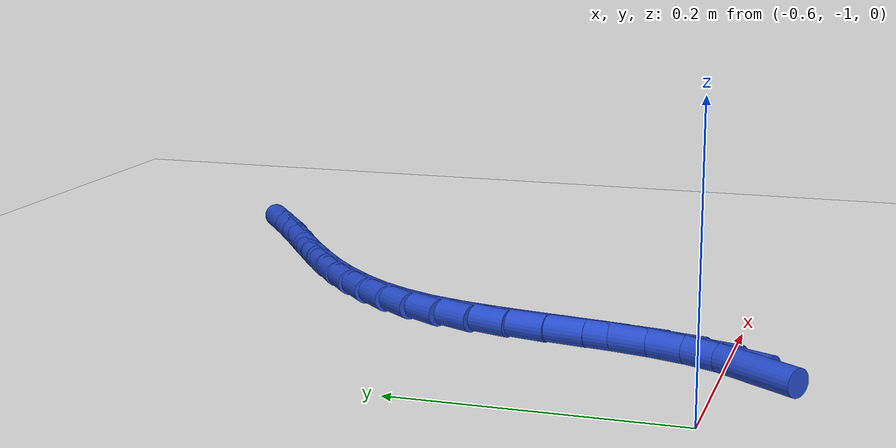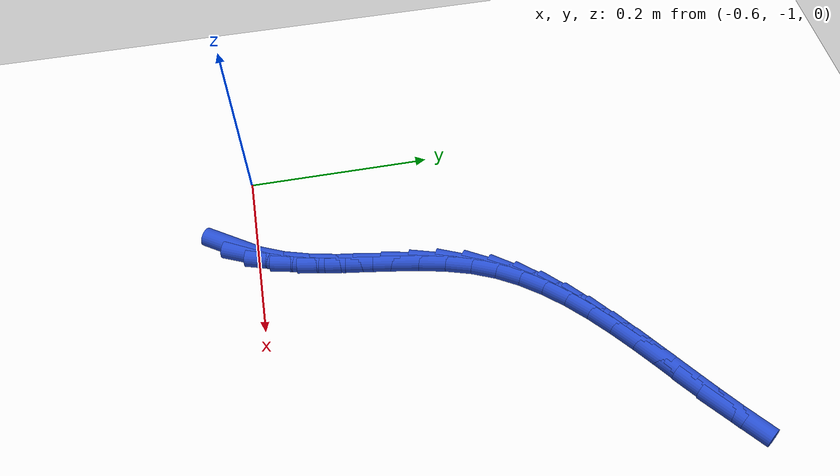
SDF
<sdf version="1.6">
 <world name="default">
  <model name="ground_plane">
   <static>1</static>
   <link name="link">
    <collision name="collision">
     <geometry><plane><normal>0 0 1</normal><size>100 100</size></plane></geometry>
     <surface><friction><ode><mu>100</mu><mu2>50</mu2></ode></friction></surface>
    </collision>
    <visual name="visual">
     <cast_shadows>0</cast_shadows>
     <geometry><plane><normal>0 0 1</normal><size>100 100</size></plane></geometry>
     <material>
      <script><uri>file://media/materials/scripts/gazebo.material</uri><name>Gazebo/WhiteGlow</name></script>
     </material>
    </visual>
   </link>
  </model>
  <model name="line">
   <link name="link_208">
    <pose>-0.5051352361949727 -1.019443185577198 0.01 0 1.57 0.9690706521282587</pose>
    <collision name="collision">
     <geometry><cylinder><radius>0.01</radius><length>0.08</length></cylinder></geometry>
    </collision>
    <visual name="visual">
     <material>
      <script><name>Gazebo/Blue</name><uri>file://media/materials/scripts/gazebo.material</uri></script>
     </material>
     <geometry><cylinder><radius>0.01</radius><length>0.08</length></cylinder></geometry>
    </visual>
   </link>
   <link name="link_209">
    <pose>-0.49033282059571887 -0.9978864738229533 0.01 0 1.57 1.1386271792740852</pose>
    <collision name="collision">
     <geometry><cylinder><radius>0.01</radius><length>0.08</length></cylinder></geometry>
    </collision>
    <visual name="visual">
     <material>
      <script><name>Gazebo/Blue</name><uri>file://media/materials/scripts/gazebo.material</uri></script>
     </material>
     <geometry><cylinder><radius>0.01</radius><length>0.08</length></cylinder></geometry>
    </visual>
   </link>
   <link name="link_210">
    <pose>-0.4791696905641966 -0.9736845151750033 0.01 0 1.57 1.2645328469423418</pose>
    <collision name="collision">
     <geometry><cylinder><radius>0.01</radius><length>0.08</length></cylinder></geometry>
    </collision>
    <visual name="visual">
     <material>
      <script><name>Gazebo/Blue</name><uri>file://media/materials/scripts/gazebo.material</uri></script>
     </material>
     <geometry><cylinder><radius>0.01</radius><length>0.08</length></cylinder></geometry>
    </visual>
   </link>
   <link name="link_211">
    <pose>-0.47085461396724915 -0.9473886637559941 0.01 0 1.57 1.3483328888640917</pose>
    <collision name="collision">
     <geometry><cylinder><radius>0.01</radius><length>0.08</length></cylinder></geometry>
    </collision>
    <visual name="visual">
     <material>
      <script><name>Gazebo/Blue</name><uri>file://media/materials/scripts/gazebo.material</uri></script>
     </material>
     <geometry><cylinder><radius>0.01</radius><length>0.08</length></cylinder></geometry>
    </visual>
   </link>
   <link name="link_212">
    <pose>-0.46456163994962907 -0.9195691852667582 0.01 0 1.57 1.3954749590549334</pose>
    <collision name="collision">
     <geometry><cylinder><radius>0.01</radius><length>0.08</length></cylinder></geometry>
    </collision>
    <visual name="visual">
     <material>
      <script><name>Gazebo/Blue</name><uri>file://media/materials/scripts/gazebo.material</uri></script>
     </material>
     <geometry><cylinder><radius>0.01</radius><length>0.08</length></cylinder></geometry>
    </visual>
   </link>
   <link name="link_213">
    <pose>-0.4594648176560885 -0.8907963454081271 0.01 0 1.57 1.4100793084229402</pose>
    <collision name="collision">
     <geometry><cylinder><radius>0.01</radius><length>0.08</length></cylinder></geometry>
    </collision>
    <visual name="visual">
     <material>
      <script><name>Gazebo/Blue</name><uri>file://media/materials/scripts/gazebo.material</uri></script>
     </material>
     <geometry><cylinder><radius>0.01</radius><length>0.08</length></cylinder></geometry>
    </visual>
   </link>
   <link name="link_214">
    <pose>-0.45473819623137957 -0.861640409880933 0.01 0 1.57 1.3937737785738575</pose>
    <collision name="collision">
     <geometry><cylinder><radius>0.01</radius><length>0.08</length></cylinder></geometry>
    </collision>
    <visual name="visual">
     <material>
      <script><name>Gazebo/Blue</name><uri>file://media/materials/scripts/gazebo.material</uri></script>
     </material>
     <geometry><cylinder><radius>0.01</radius><length>0.08</length></cylinder></geometry>
    </visual>
   </link>
   <link name="link_215">
    <pose>-0.44955582482025486 -0.8326716443860084 0.01 0 1.57 1.3455540392796126</pose>
    <collision name="collision">
     <geometry><cylinder><radius>0.01</radius><length>0.08</length></cylinder></geometry>
    </collision>
    <visual name="visual">
     <material>
      <script><name>Gazebo/Blue</name><uri>file://media/materials/scripts/gazebo.material</uri></script>
     </material>
     <geometry><cylinder><radius>0.01</radius><length>0.08</length></cylinder></geometry>
    </visual>
   </link>
   <link name="link_216">
    <pose>-0.4430917525674663 -0.8044603146241847 0.01 0 1.57 1.2621409923336382</pose>
    <collision name="collision">
     <geometry><cylinder><radius>0.01</radius><length>0.08</length></cylinder></geometry>
    </collision>
    <visual name="visual">
     <material>
      <script><name>Gazebo/Blue</name><uri>file://media/materials/scripts/gazebo.material</uri></script>
     </material>
     <geometry><cylinder><radius>0.01</radius><length>0.08</length></cylinder></geometry>
    </visual>
   </link>
   <link name="link_217">
    <pose>-0.4345200286177665 -0.7775766862962944 0.01 0 1.57 1.1436510172550718</pose>
    <collision name="collision">
     <geometry><cylinder><radius>0.01</radius><length>0.08</length></cylinder></geometry>
    </collision>
    <visual name="visual">
     <material>
      <script><name>Gazebo/Blue</name><uri>file://media/materials/scripts/gazebo.material</uri></script>
     </material>
     <geometry><cylinder><radius>0.01</radius><length>0.08</length></cylinder></geometry>
    </visual>
   </link>
   <link name="link_218">
    <pose>-0.423115848115354 -0.7525219367391008 0.01 0 1.57 1.021600754092088</pose>
    <collision name="collision">
     <geometry><cylinder><radius>0.01</radius><length>0.08</length></cylinder></geometry>
    </collision>
    <visual name="visual">
     <material>
      <script><name>Gazebo/Blue</name><uri>file://media/materials/scripts/gazebo.material</uri></script>
     </material>
     <geometry><cylinder><radius>0.01</radius><length>0.08</length></cylinder></geometry>
    </visual>
   </link>
   <link name="link_219">
    <pose>-0.4088976583361755 -0.7292895605915478 0.01 0 1.57 0.9141175079416836</pose>
    <collision name="collision">
     <geometry><cylinder><radius>0.01</radius><length>0.08</length></cylinder></geometry>
    </collision>
    <visual name="visual">
     <material>
      <script><name>Gazebo/Blue</name><uri>file://media/materials/scripts/gazebo.material</uri></script>
     </material>
     <geometry><cylinder><radius>0.01</radius><length>0.08</length></cylinder></geometry>
    </visual>
   </link>
   <link name="link_220">
    <pose>-0.3922153669154114 -0.7076466465635417 0.01 0 1.57 0.823566908474492</pose>
    <collision name="collision">
     <geometry><cylinder><radius>0.01</radius><length>0.08</length></cylinder></geometry>
    </collision>
    <visual name="visual">
     <material>
      <script><name>Gazebo/Blue</name><uri>file://media/materials/scripts/gazebo.material</uri></script>
     </material>
     <geometry><cylinder><radius>0.01</radius><length>0.08</length></cylinder></geometry>
    </visual>
   </link>
   <link name="link_221">
    <pose>-0.37342040957731226 -0.6873592395948501 0.01 0 1.57 0.750410908914772</pose>
    <collision name="collision">
     <geometry><cylinder><radius>0.01</radius><length>0.08</length></cylinder></geometry>
    </collision>
    <visual name="visual">
     <material>
      <script><name>Gazebo/Blue</name><uri>file://media/materials/scripts/gazebo.material</uri></script>
     </material>
     <geometry><cylinder><radius>0.01</radius><length>0.08</length></cylinder></geometry>
    </visual>
   </link>
   <link name="link_222">
    <pose>-0.35286422204612794 -0.6681933846252405 0.01 0 1.57 0.6940197681426559</pose>
    <collision name="collision">
     <geometry><cylinder><radius>0.01</radius><length>0.08</length></cylinder></geometry>
    </collision>
    <visual name="visual">
     <material>
      <script><name>Gazebo/Blue</name><uri>file://media/materials/scripts/gazebo.material</uri></script>
     </material>
     <geometry><cylinder><radius>0.01</radius><length>0.08</length></cylinder></geometry>
    </visual>
   </link>
   <link name="link_223">
    <pose>-0.33089824004610857 -0.6499151265944799 0.01 0 1.57 0.6533333811882792</pose>
    <collision name="collision">
     <geometry><cylinder><radius>0.01</radius><length>0.08</length></cylinder></geometry>
    </collision>
    <visual name="visual">
     <material>
      <script><name>Gazebo/Blue</name><uri>file://media/materials/scripts/gazebo.material</uri></script>
     </material>
     <geometry><cylinder><radius>0.01</radius><length>0.08</length></cylinder></geometry>
    </visual>
   </link>
   <link name="link_224">
    <pose>-0.3078738993015044 -0.6322905104423363 0.01 0 1.57 0.6273016490667018</pose>
    <collision name="collision">
     <geometry><cylinder><radius>0.01</radius><length>0.08</length></cylinder></geometry>
    </collision>
    <visual name="visual">
     <material>
      <script><name>Gazebo/Blue</name><uri>file://media/materials/scripts/gazebo.material</uri></script>
     </material>
     <geometry><cylinder><radius>0.01</radius><length>0.08</length></cylinder></geometry>
    </visual>
   </link>
   <link name="link_225">
    <pose>-0.2841426355365653 -0.6150855811085765 0.01 0 1.57 0.6151279081599123</pose>
    <collision name="collision">
     <geometry><cylinder><radius>0.01</radius><length>0.08</length></cylinder></geometry>
    </collision>
    <visual name="visual">
     <material>
      <script><name>Gazebo/Blue</name><uri>file://media/materials/scripts/gazebo.material</uri></script>
     </material>
     <geometry><cylinder><radius>0.01</radius><length>0.08</length></cylinder></geometry>
    </visual>
   </link>
   <link name="link_226">
    <pose>-0.2600558844755415 -0.5980663835329684 0.01 0 1.57 0.616382684403141</pose>
    <collision name="collision">
     <geometry><cylinder><radius>0.01</radius><length>0.08</length></cylinder></geometry>
    </collision>
    <visual name="visual">
     <material>
      <script><name>Gazebo/Blue</name><uri>file://media/materials/scripts/gazebo.material</uri></script>
     </material>
     <geometry><cylinder><radius>0.01</radius><length>0.08</length></cylinder></geometry>
    </visual>
   </link>
   <link name="link_227">
    <pose>-0.2359650818426831 -0.5809989626552792 0.01 0 1.57 0.6310420358751517</pose>
    <collision name="collision">
     <geometry><cylinder><radius>0.01</radius><length>0.08</length></cylinder></geometry>
    </collision>
    <visual name="visual">
     <material>
      <script><name>Gazebo/Blue</name><uri>file://media/materials/scripts/gazebo.material</uri></script>
     </material>
     <geometry><cylinder><radius>0.01</radius><length>0.08</length></cylinder></geometry>
    </visual>
   </link>
   <link name="link_228">
    <pose>-0.21222166336224016 -0.5636493634152762 0.01 0 1.57 0.659477285845189</pose>
    <collision name="collision">
     <geometry><cylinder><radius>0.01</radius><length>0.08</length></cylinder></geometry>
    </collision>
    <visual name="visual">
     <material>
      <script><name>Gazebo/Blue</name><uri>file://media/materials/scripts/gazebo.material</uri></script>
     </material>
     <geometry><cylinder><radius>0.01</radius><length>0.08</length></cylinder></geometry>
    </visual>
   </link>
  </model>
 </world>
</sdf>
